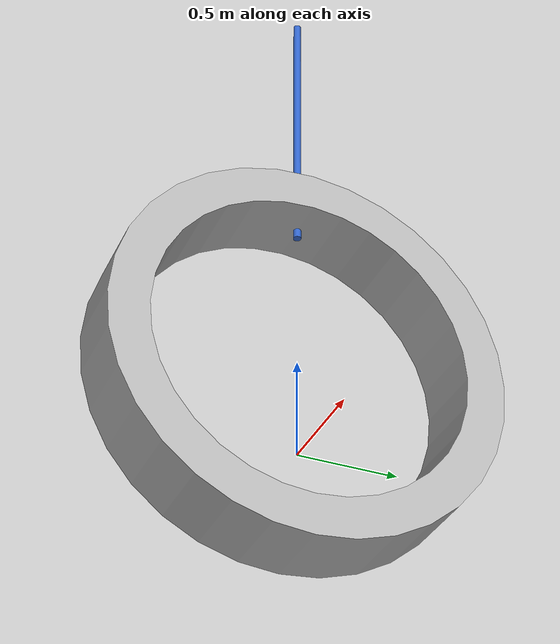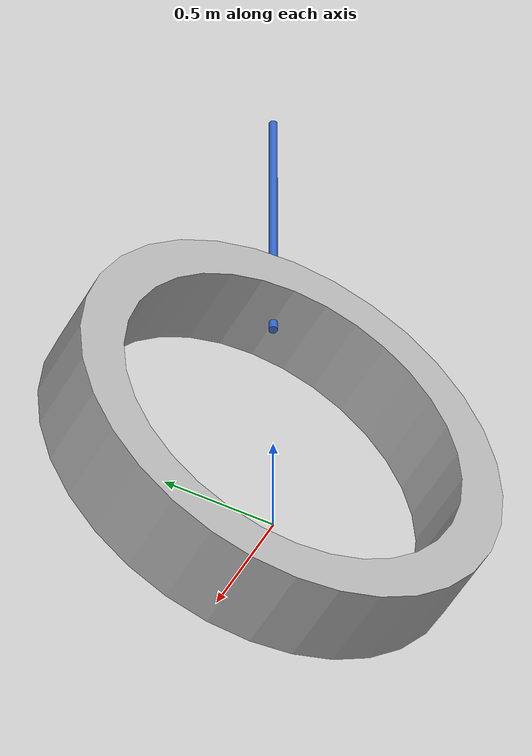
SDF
<?xml version="1.0" ?>
<sdf version="1.7">
  <model name="swinging_hoop">
    <link name="arm_link">
      <pose>0 0 2.0 0 0 0</pose> <!-- rpy: (+pi/2,0,0). Center at y=-L/2 so top end is at the hinge -->
      <inertial>
        <mass>1.0</mass>
        <!-- Cylinder inertia with axis along link Y -->
        <inertia>
          <ixx>0.1876</ixx>
          <iyy>0.0002</iyy>
          <izz>0.1876</izz>
        </inertia>
      </inertial>
      <collision name="arm_collision">
        <surface>
            <contact>
            <collide_bitmask>0x00</collide_bitmask>
              <collide_without_contact>
                true
              </collide_without_contact>
              <bullet>
              <soft_cfm>1e-5</soft_cfm>     <!-- numerical compliance -->
                <soft_erp>0.2</soft_erp>      <!-- error reduction -->
                <kp>2e6</kp>                  <!-- WAY lower than 1e12 -->
                <kd>50</kd>                   <!-- damping with kp -->
                <split_impulse>true</split_impulse>
                <split_impulse_penetration_threshold>-0.01</split_impulse_penetration_threshold>
                </bullet>
            </contact>

      </surface>
        <geometry>
          <cylinder>
            <radius>0.02</radius>
            <length>1.5</length>
          </cylinder>
        </geometry>
      </collision>
      <visual name="arm_visual">
        <geometry>
          <cylinder>
            <radius>0.02</radius>
            <length>1.5</length>
          </cylinder>
        </geometry>
        <material>
          <ambient>0.15 0.25 0.5 1</ambient>
          <diffuse>0.2 0.4 0.8 1</diffuse>
        </material>
      </visual>
    </link>

    <joint name="hinge_to_arm" type="revolute">
      <parent>world</parent>
      <child>arm_link</child>
      <pose relative_to="arm_link">0 0 0.75 0 0 0</pose> <!-- joint at hinge center -->
      <axis>
        <xyz expressed_in="arm_link">1 0 0</xyz>
        <limit>
          <lower>-inf</lower>
          <upper>inf</upper>
        </limit>
      </axis>
    </joint>
     <plugin
        filename="joint_position_controller_plugin"
        name="gz::sim::systems::JointPositionController">
        <joint_name>hinge_to_arm</joint_name>
        <joint_index>0</joint_index>
        <p_gain>68.6</p_gain>
        <i_gain>30.49</i_gain>
        <d_gain>16.0</d_gain>
        <i_max>25</i_max>
        <i_min>-25</i_min>
        <cmd_max>60</cmd_max>
        <cmd_min>-60</cmd_min>
      </plugin>

       <link name="hoop_link">
      <!-- The fixed joint below positions this link; initial pose doesn't matter, but zero keeps things tidy -->
      <pose>0 0 0.50 0 0 0</pose>
      <inertial>
        <mass>2.0</mass>
        <density>7823</density>
        <!-- Approx torus inertia (axis along local Y). Good enough unless you're doing precision dynamics. -->
        <inertia>
          <ixx>1.0125</ixx>
          <iyy>2.015</iyy>
          <izz>1.0125</izz>
        </inertia>
      </inertial>

      <collision name="hoop_collision">
      <surface>
  <contact>
  <collide_bitmask>0x00</collide_bitmask>
    <collide_without_contact>
      true
    </collide_without_contact>
  </contact>
</surface>
        <geometry>
          <mesh>
            <!-- TODO: replace with your actual torus mesh path -->
            <uri>model://meshes/racing_hoop2.dae</uri>
            <scale>1 1 1</scale>
          </mesh>
        </geometry>
        <!-- Offset the mesh so the attachment point is the hoop's top (0,1,0) -->
      </collision>

      <visual name="hoop_visual">
        <geometry>
          <mesh>
            <uri>model://meshes/racing_hoop2.dae</uri>
            <scale>1 1 1</scale>
          </mesh>
        </geometry>
      </visual>
    </link>

    <!-- Fixed joint: attach the hoop at the arm's bottom end -->
    <joint name="arm_to_hoop" type="fixed">
      <parent>arm_link</parent>
      <child>hoop_link</child>
      <!-- Place joint at arm bottom: parent's origin is at y=-0.75; bottom end is another -0.75 -->
      <pose>0 0.85 0 0 0 0</pose>
    </joint>
    </model>
</sdf>
